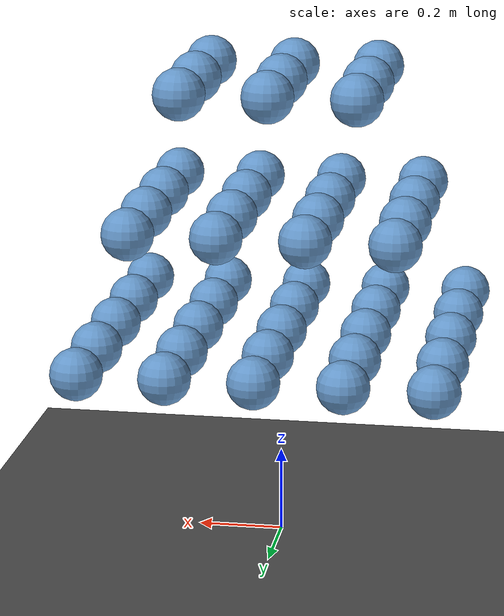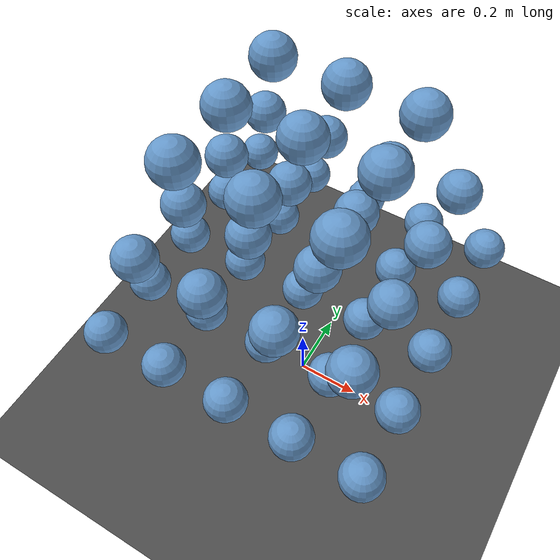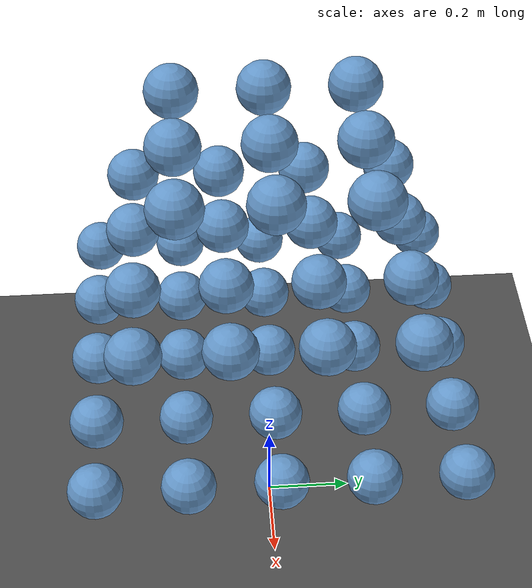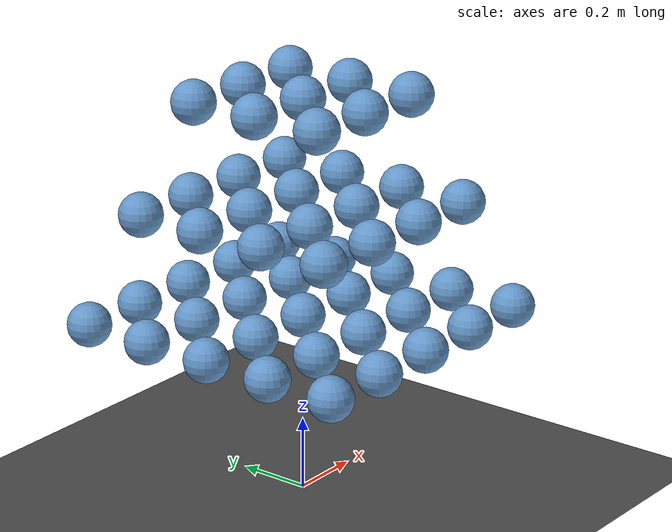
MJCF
<!-- Contact stress test: 50 free bodies (spheres) dropped on a plane.
     Generates 50+ simultaneous contacts for solver stress testing.
     Used to benchmark contact/constraint/solver throughput. -->
<mujoco model="contact_stress">
  <option gravity="0 0 -9.81" timestep="0.002"/>

  <default>
    <geom type="sphere" size="0.06" mass="0.3" rgba="0.4 0.6 0.8 1"/>
  </default>

  <worldbody>
    <geom name="floor" type="plane" size="10 10 0.1" rgba="0.3 0.3 0.3 1"/>

    <!-- Layer 1: z=0.5, 5x5 grid -->
    <body name="b00" pos="-0.4 -0.4 0.5"><freejoint/><geom/></body>
    <body name="b01" pos="-0.2 -0.4 0.5"><freejoint/><geom/></body>
    <body name="b02" pos=" 0.0 -0.4 0.5"><freejoint/><geom/></body>
    <body name="b03" pos=" 0.2 -0.4 0.5"><freejoint/><geom/></body>
    <body name="b04" pos=" 0.4 -0.4 0.5"><freejoint/><geom/></body>
    <body name="b05" pos="-0.4 -0.2 0.5"><freejoint/><geom/></body>
    <body name="b06" pos="-0.2 -0.2 0.5"><freejoint/><geom/></body>
    <body name="b07" pos=" 0.0 -0.2 0.5"><freejoint/><geom/></body>
    <body name="b08" pos=" 0.2 -0.2 0.5"><freejoint/><geom/></body>
    <body name="b09" pos=" 0.4 -0.2 0.5"><freejoint/><geom/></body>
    <body name="b10" pos="-0.4  0.0 0.5"><freejoint/><geom/></body>
    <body name="b11" pos="-0.2  0.0 0.5"><freejoint/><geom/></body>
    <body name="b12" pos=" 0.0  0.0 0.5"><freejoint/><geom/></body>
    <body name="b13" pos=" 0.2  0.0 0.5"><freejoint/><geom/></body>
    <body name="b14" pos=" 0.4  0.0 0.5"><freejoint/><geom/></body>
    <body name="b15" pos="-0.4  0.2 0.5"><freejoint/><geom/></body>
    <body name="b16" pos="-0.2  0.2 0.5"><freejoint/><geom/></body>
    <body name="b17" pos=" 0.0  0.2 0.5"><freejoint/><geom/></body>
    <body name="b18" pos=" 0.2  0.2 0.5"><freejoint/><geom/></body>
    <body name="b19" pos=" 0.4  0.2 0.5"><freejoint/><geom/></body>
    <body name="b20" pos="-0.4  0.4 0.5"><freejoint/><geom/></body>
    <body name="b21" pos="-0.2  0.4 0.5"><freejoint/><geom/></body>
    <body name="b22" pos=" 0.0  0.4 0.5"><freejoint/><geom/></body>
    <body name="b23" pos=" 0.2  0.4 0.5"><freejoint/><geom/></body>
    <body name="b24" pos=" 0.4  0.4 0.5"><freejoint/><geom/></body>

    <!-- Layer 2: z=0.8, 5x5 grid (offset by 0.1) -->
    <body name="b25" pos="-0.3 -0.3 0.8"><freejoint/><geom/></body>
    <body name="b26" pos="-0.1 -0.3 0.8"><freejoint/><geom/></body>
    <body name="b27" pos=" 0.1 -0.3 0.8"><freejoint/><geom/></body>
    <body name="b28" pos=" 0.3 -0.3 0.8"><freejoint/><geom/></body>
    <body name="b29" pos="-0.3 -0.1 0.8"><freejoint/><geom/></body>
    <body name="b30" pos="-0.1 -0.1 0.8"><freejoint/><geom/></body>
    <body name="b31" pos=" 0.1 -0.1 0.8"><freejoint/><geom/></body>
    <body name="b32" pos=" 0.3 -0.1 0.8"><freejoint/><geom/></body>
    <body name="b33" pos="-0.3  0.1 0.8"><freejoint/><geom/></body>
    <body name="b34" pos="-0.1  0.1 0.8"><freejoint/><geom/></body>
    <body name="b35" pos=" 0.1  0.1 0.8"><freejoint/><geom/></body>
    <body name="b36" pos=" 0.3  0.1 0.8"><freejoint/><geom/></body>
    <body name="b37" pos="-0.3  0.3 0.8"><freejoint/><geom/></body>
    <body name="b38" pos="-0.1  0.3 0.8"><freejoint/><geom/></body>
    <body name="b39" pos=" 0.1  0.3 0.8"><freejoint/><geom/></body>
    <body name="b40" pos=" 0.3  0.3 0.8"><freejoint/><geom/></body>

    <!-- Layer 3: z=1.1, 3x3 grid (top of pile) -->
    <body name="b41" pos="-0.2 -0.2 1.1"><freejoint/><geom/></body>
    <body name="b42" pos=" 0.0 -0.2 1.1"><freejoint/><geom/></body>
    <body name="b43" pos=" 0.2 -0.2 1.1"><freejoint/><geom/></body>
    <body name="b44" pos="-0.2  0.0 1.1"><freejoint/><geom/></body>
    <body name="b45" pos=" 0.0  0.0 1.1"><freejoint/><geom/></body>
    <body name="b46" pos=" 0.2  0.0 1.1"><freejoint/><geom/></body>
    <body name="b47" pos="-0.2  0.2 1.1"><freejoint/><geom/></body>
    <body name="b48" pos=" 0.0  0.2 1.1"><freejoint/><geom/></body>
    <body name="b49" pos=" 0.2  0.2 1.1"><freejoint/><geom/></body>
  </worldbody>
</mujoco>
